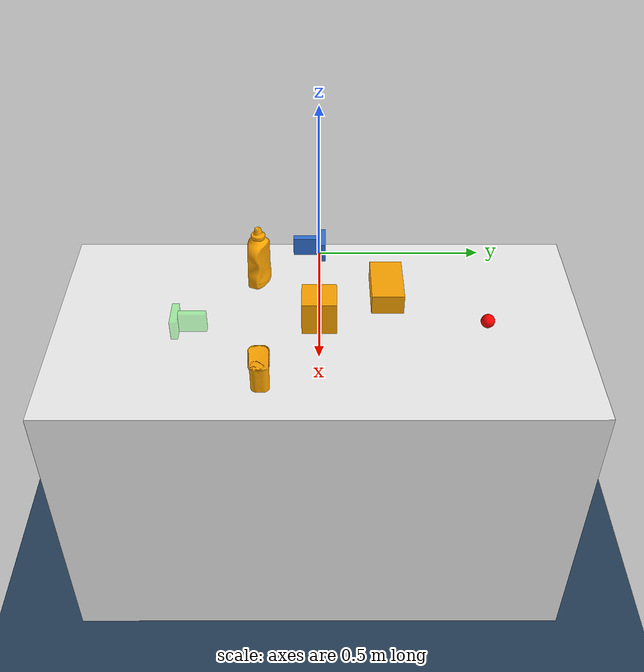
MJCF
<mujoco model="xarm6_pusht_ycb_clutter_point">
  <include file="common_point.xml"/>
  <include file="tee.xml"/>

  <asset>
    <mesh name="spam_can" file="assets/spam_can.obj" maxhullvert="32"/>
    <mesh name="mustard_bottle" file="assets/mustard_bottle.obj"
      maxhullvert="32"/>
  </asset>

  <worldbody>
    <camera name="front" pos="1.5592 0.0000 0.6494"
      xyaxes="0.0000 1.0000 -0.0000 -0.4226 0.0000 0.9063"/>

    <geom class="tabletop_obstacle" name="obs_box" type="box" size="0.05 0.05 0.05" pos="0.35 0.0 0.05"/>
    <geom class="tabletop_obstacle" name="spam_can" type="mesh"
      mesh="spam_can" pos="0.60 -0.16 0.0418"/>
    <geom class="tabletop_obstacle" name="domino_sugar" type="box"
      size="0.0875 0.0475 0.0300" pos="0.22 0.20 0.0300"/>
    <geom class="tabletop_obstacle" name="mustard_bottle" type="mesh"
      mesh="mustard_bottle" pos="0.15 -0.18 0.0957"/>

    <body name="pusher" pos="0.381 0.480 0.0298">
      <joint name="root_x" type="slide" axis="1 0 0" damping="0.05"/>
      <joint name="root_y" type="slide" axis="0 1 0" damping="0.05"/>
      <geom name="pusher" type="sphere" size="0.02" mass="1.0" rgba="1 0 0 1" solref="0.02 1"/>
      <site name="pusher" pos="0 0 0" rgba="0 0 0 0"/>
    </body>
  </worldbody>

  <actuator>
    <velocity name="x_motor" joint="root_x" ctrllimited="true" ctrlrange="-0.6 0.6" kv="100" forcerange="-60 60"/>
    <velocity name="y_motor" joint="root_y" ctrllimited="true" ctrlrange="-0.6 0.6" kv="100" forcerange="-60 60"/>
  </actuator>

  <keyframe>
    <key name="start" qpos="0.381 0.400 0 0 0 0"/>
  </keyframe>
</mujoco>

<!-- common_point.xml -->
<mujoco model="xarm6_pusht_tabletop_common_point">
  <compiler angle="degree"/>

  <option timestep="0.01" gravity="0 0 -9.81" iterations="20" ls_iterations="20" integrator="implicitfast"/>

  <default>
    <geom friction="0.5 0.005 0.0001" solref="0.004 1" solimp="0.9 0.95 0.001"/>
    <default class="goal">
      <geom conaffinity="0" contype="0" rgba="0 1 0 0.3"/>
    </default>
    <default class="local_goal">
      <geom conaffinity="0" contype="0" rgba="0 0.30 0.95 0.25"/>
    </default>
    <default class="obstacle">
      <geom conaffinity="1" contype="1" rgba="0.5 0.5 0.5 1"/>
    </default>
    <default class="tabletop_obstacle">
      <geom conaffinity="1" contype="1" rgba="1.0 0.647 0.0 1"/>
    </default>
  </default>

  <visual>
    <headlight diffuse="0.6 0.6 0.6" ambient="0.3 0.3 0.3" specular="0 0 0"/>
    <rgba haze="0.15 0.25 0.35 1"/>
  </visual>

  <asset>
    <texture type="skybox" builtin="gradient" rgb1="0.3 0.5 0.7" rgb2="0 0 0" width="512" height="3072"/>
    <texture type="2d" name="groundplane" builtin="checker" mark="edge" rgb1="0.2 0.3 0.4" rgb2="0.1 0.2 0.3"
      markrgb="0.8 0.8 0.8" width="300" height="300"/>
    <material name="groundplane" texture="groundplane" texuniform="true" texrepeat="5 5" reflectance="0.2"/>
  </asset>

  <worldbody>
    <light pos="0.3 0.0 1"/>
    <!-- Room floor at the lab table's own foot, 0.91 m below the top -- see
         common.xml's own floor comment for the contype/conaffinity split. -->
    <geom name="floor" size="0 0 .125" type="plane" pos="0 0 -0.91"
      contype="2" conaffinity="2" material="groundplane"/>
  </worldbody>
</mujoco>

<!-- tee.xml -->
<mujoco model="xarm6_pusht_tabletop_tee">

  <worldbody>
    <geom name="table" type="box" size="0.40 0.7615 0.455" pos="0.35 0 -0.455"
      contype="3" conaffinity="3" rgba="0.95 0.95 0.95 1"/>

    <body name="goal" mocap="true" pos="0.381 -0.400 0.0298" quat="0 0 0 1">
      <geom class="goal" name="goal_crossbar" type="box" size="0.0445 0.0099 0.0298" pos="0.0 0.0099 0.0"/>
      <geom class="goal" name="goal_stem" type="box" size="0.0099 0.0397 0.0298" pos="0.0 -0.0397 0.0"/>
    </body>

    <body name="local_goal" mocap="true" pos="0.0 0.0 0.0298" quat="1 0 0 0">
      <geom class="local_goal" name="local_goal_crossbar" type="box" size="0.0445 0.0099 0.0298" pos="0.0 0.0099 0.0"/>
      <geom class="local_goal" name="local_goal_stem" type="box" size="0.0099 0.0397 0.0298" pos="0.0 -0.0397 0.0"/>
    </body>

    <body name="block" pos="0.0 0.0 0.0298">
      <joint name="T_x" type="slide" axis="1 0 0" damping="0.0"/>
      <joint name="T_y" type="slide" axis="0 1 0" damping="0.0"/>
      <joint name="T_z" type="hinge" axis="0 0 1" damping="0.0"/>
      <joint name="T_zs" type="slide" axis="0 0 1" damping="0.0"/>
      <geom name="block_crossbar" contype="3" conaffinity="3" type="box" size="0.0445 0.0099 0.0298" pos="0.0 0.0099 0.0" mass="0.05" rgba="0.2 0.45 0.85 1"/>
      <geom name="block_stem" contype="3" conaffinity="3" type="box" size="0.0099 0.0397 0.0298" pos="0.0 -0.0397 0.0" mass="0.05" rgba="0.2 0.45 0.85 1"/>
    </body>
  </worldbody>

  <contact>
    <pair geom1="block_crossbar" geom2="table" condim="3" friction="0.3 0.3 0.005 0.0001 0.0001" solimp="0.999 0.9999 0.0001"/>
    <pair geom1="block_stem" geom2="table" condim="3" friction="0.3 0.3 0.005 0.0001 0.0001" solimp="0.999 0.9999 0.0001"/>
  </contact>

  <sensor>
    <framepos name="position" objtype="body" objname="block" reftype="body" refname="goal"/>
    <framequat name="orientation" objtype="body" objname="block" reftype="body" refname="goal"/>
  </sensor>

  <statistic center="0.381 0 0" extent="0.9"/>
</mujoco>
